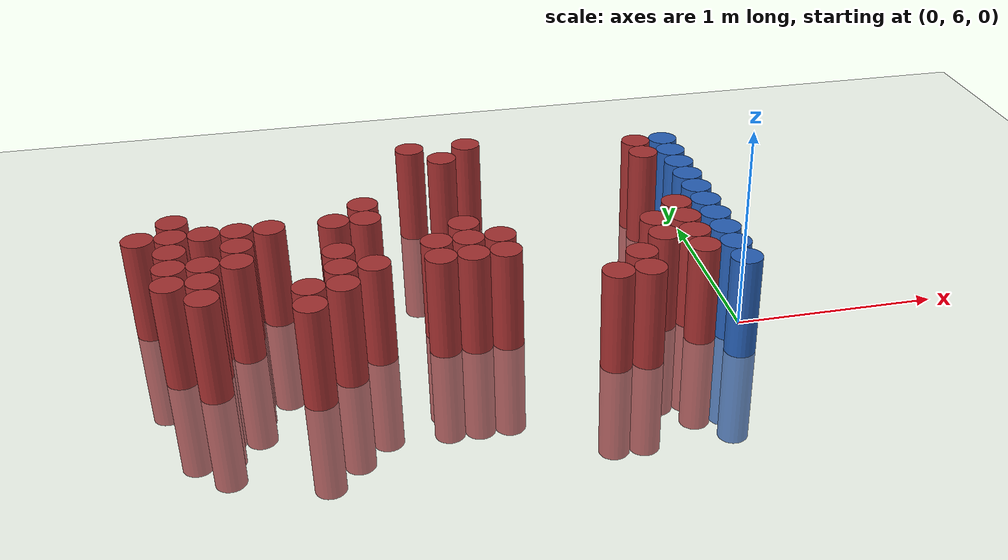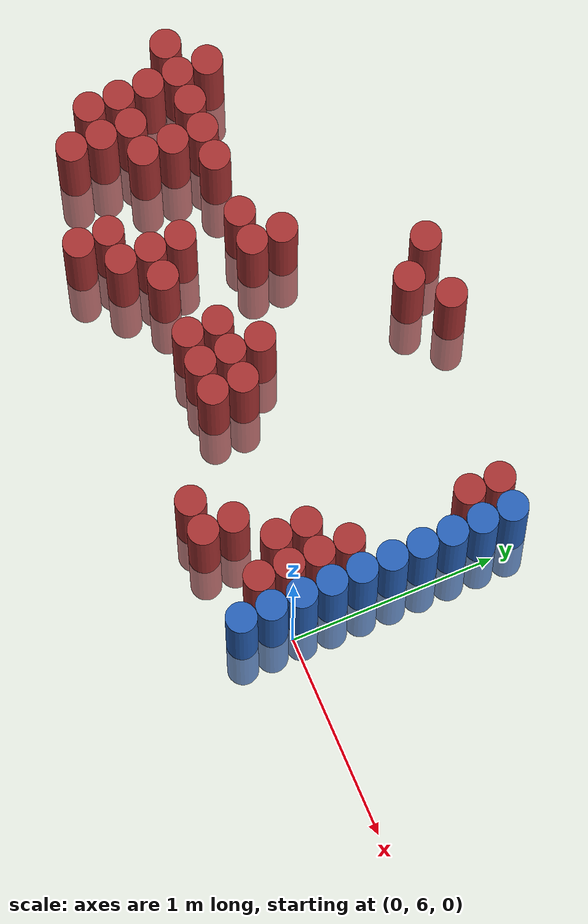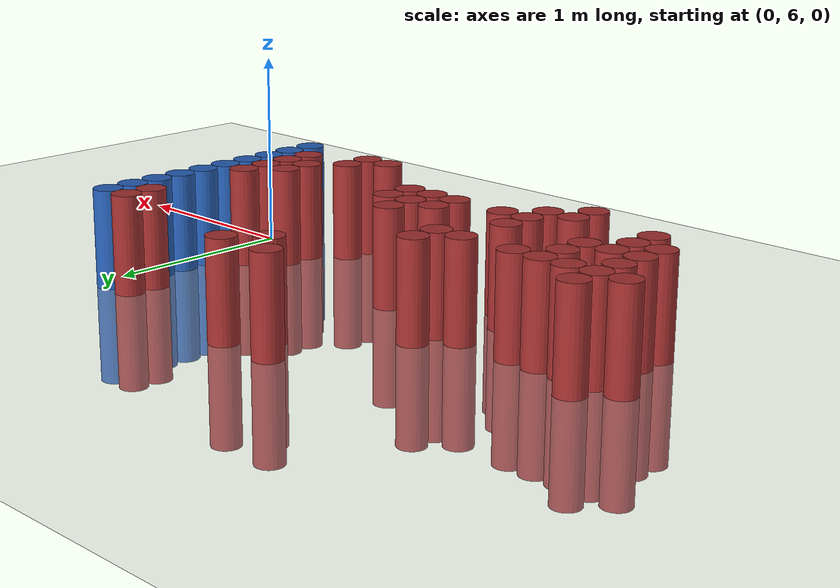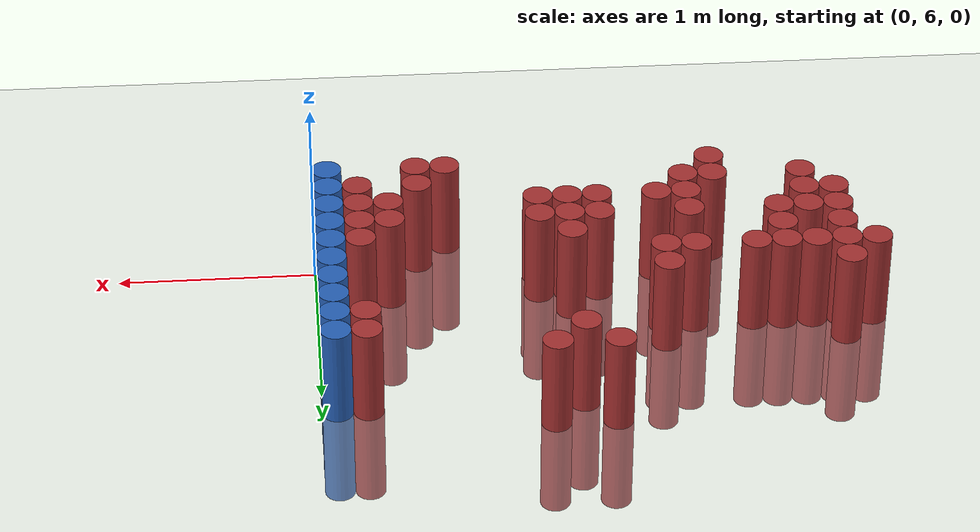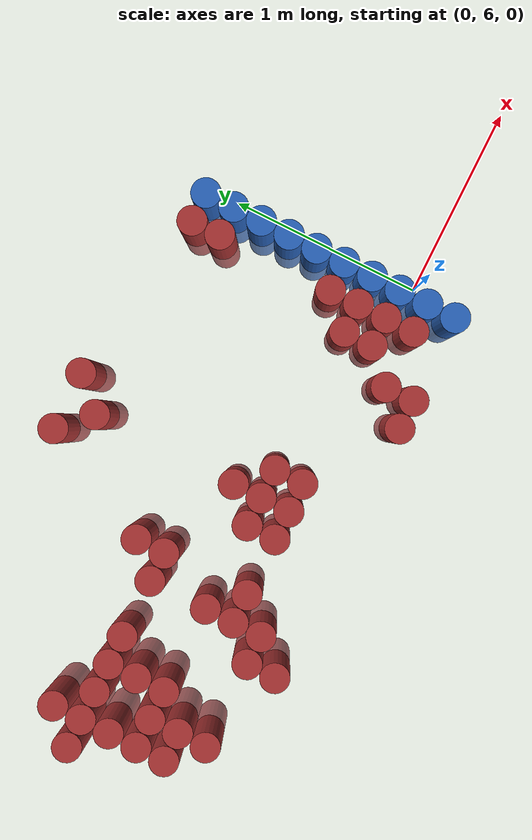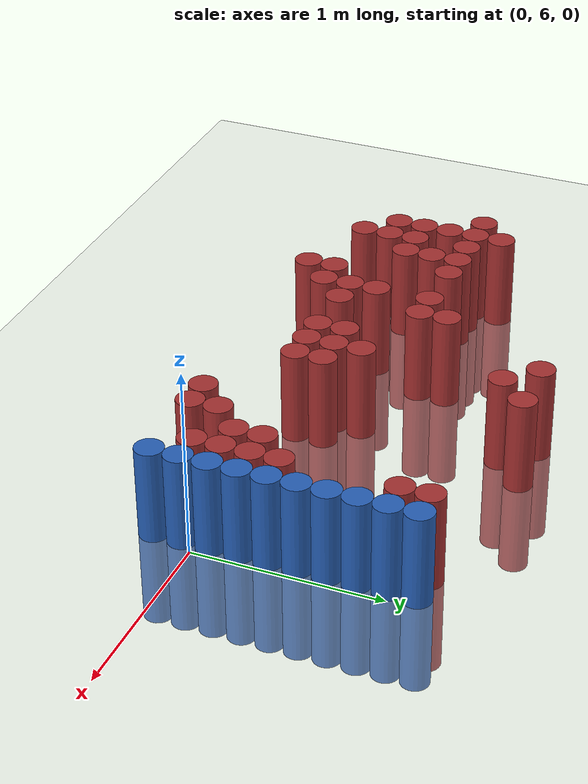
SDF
<sdf version="1.6">
 <world name="default">
  <model name="ground_plane">
   <static>1</static>
   <link name="link">
    <collision name="collision">
     <geometry><plane><normal>0 0 1</normal><size>100 100</size></plane></geometry>
     <surface><friction><ode><mu>100</mu><mu2>50</mu2></ode></friction></surface>
    </collision>
    <visual name="visual">
     <cast_shadows>0</cast_shadows>
     <geometry><plane><normal>0 0 1</normal><size>100 100</size></plane></geometry>
     <material>
      <script><uri>file://media/materials/scripts/gazebo.material</uri><name>Gazebo/Grey</name></script>
     </material>
    </visual>
   </link>
  </model>
  <model name="unit_cylinder_157">
   <static>1</static>
   <pose>-2.775000 6.525000 0.000000 0.000000 0.000000 0.000000</pose>
   <link name="link">
    <inertial>
     <mass>1</mass>
     <inertia><ixx>0.145833</ixx><ixy>0</ixy><ixz>0</ixz><iyy>0.145833</iyy><iyz>0</iyz><izz>0.125</izz></inertia>
    </inertial>
    <collision name="collision">
     <geometry><cylinder><radius>0.075000</radius><length>1</length></cylinder></geometry>
    </collision>
    <visual name="visual">
     <geometry><cylinder><radius>0.075000</radius><length>1</length></cylinder></geometry>
     <material>
      <ambient>0.648000 0.192000 0.192000 1</ambient>
      <diffuse>0.648000 0.192000 0.192000 1</diffuse>
     </material>
     <material>
      <script><name>Gazebo/Grey</name><uri>file://media/materials/scripts/gazebo.material</uri></script>
     </material>
    </visual>
   </link>
  </model>
  <model name="unit_cylinder_160">
   <static>1</static>
   <pose>-2.625000 6.075000 0.000000 0.000000 0.000000 0.000000</pose>
   <link name="link">
    <inertial>
     <mass>1</mass>
     <inertia><ixx>0.145833</ixx><ixy>0</ixy><ixz>0</ixz><iyy>0.145833</iyy><iyz>0</iyz><izz>0.125</izz></inertia>
    </inertial>
    <collision name="collision">
     <geometry><cylinder><radius>0.075000</radius><length>1</length></cylinder></geometry>
    </collision>
    <visual name="visual">
     <geometry><cylinder><radius>0.075000</radius><length>1</length></cylinder></geometry>
     <material>
      <ambient>0.648000 0.192000 0.192000 1</ambient>
      <diffuse>0.648000 0.192000 0.192000 1</diffuse>
     </material>
     <material>
      <script><name>Gazebo/Grey</name><uri>file://media/materials/scripts/gazebo.material</uri></script>
     </material>
    </visual>
   </link>
  </model>
  <model name="unit_cylinder_161">
   <static>1</static>
   <pose>-2.625000 6.225000 0.000000 0.000000 0.000000 0.000000</pose>
   <link name="link">
    <inertial>
     <mass>1</mass>
     <inertia><ixx>0.145833</ixx><ixy>0</ixy><ixz>0</ixz><iyy>0.145833</iyy><iyz>0</iyz><izz>0.125</izz></inertia>
    </inertial>
    <collision name="collision">
     <geometry><cylinder><radius>0.075000</radius><length>1</length></cylinder></geometry>
    </collision>
    <visual name="visual">
     <geometry><cylinder><radius>0.075000</radius><length>1</length></cylinder></geometry>
     <material>
      <ambient>0.648000 0.192000 0.192000 1</ambient>
      <diffuse>0.648000 0.192000 0.192000 1</diffuse>
     </material>
     <material>
      <script><name>Gazebo/Grey</name><uri>file://media/materials/scripts/gazebo.material</uri></script>
     </material>
    </visual>
   </link>
  </model>
  <model name="unit_cylinder_162">
   <static>1</static>
   <pose>-2.625000 6.375000 0.000000 0.000000 0.000000 0.000000</pose>
   <link name="link">
    <inertial>
     <mass>1</mass>
     <inertia><ixx>0.145833</ixx><ixy>0</ixy><ixz>0</ixz><iyy>0.145833</iyy><iyz>0</iyz><izz>0.125</izz></inertia>
    </inertial>
    <collision name="collision">
     <geometry><cylinder><radius>0.075000</radius><length>1</length></cylinder></geometry>
    </collision>
    <visual name="visual">
     <geometry><cylinder><radius>0.075000</radius><length>1</length></cylinder></geometry>
     <material>
      <ambient>0.648000 0.192000 0.192000 1</ambient>
      <diffuse>0.648000 0.192000 0.192000 1</diffuse>
     </material>
     <material>
      <script><name>Gazebo/Grey</name><uri>file://media/materials/scripts/gazebo.material</uri></script>
     </material>
    </visual>
   </link>
  </model>
  <model name="unit_cylinder_163">
   <static>1</static>
   <pose>-2.625000 6.525000 0.000000 0.000000 0.000000 0.000000</pose>
   <link name="link">
    <inertial>
     <mass>1</mass>
     <inertia><ixx>0.145833</ixx><ixy>0</ixy><ixz>0</ixz><iyy>0.145833</iyy><iyz>0</iyz><izz>0.125</izz></inertia>
    </inertial>
    <collision name="collision">
     <geometry><cylinder><radius>0.075000</radius><length>1</length></cylinder></geometry>
    </collision>
    <visual name="visual">
     <geometry><cylinder><radius>0.075000</radius><length>1</length></cylinder></geometry>
     <material>
      <ambient>0.648000 0.192000 0.192000 1</ambient>
      <diffuse>0.648000 0.192000 0.192000 1</diffuse>
     </material>
     <material>
      <script><name>Gazebo/Grey</name><uri>file://media/materials/scripts/gazebo.material</uri></script>
     </material>
    </visual>
   </link>
  </model>
  <model name="unit_cylinder_164">
   <static>1</static>
   <pose>-2.625000 6.675000 0.000000 0.000000 0.000000 0.000000</pose>
   <link name="link">
    <inertial>
     <mass>1</mass>
     <inertia><ixx>0.145833</ixx><ixy>0</ixy><ixz>0</ixz><iyy>0.145833</iyy><iyz>0</iyz><izz>0.125</izz></inertia>
    </inertial>
    <collision name="collision">
     <geometry><cylinder><radius>0.075000</radius><length>1</length></cylinder></geometry>
    </collision>
    <visual name="visual">
     <geometry><cylinder><radius>0.075000</radius><length>1</length></cylinder></geometry>
     <material>
      <ambient>0.648000 0.192000 0.192000 1</ambient>
      <diffuse>0.648000 0.192000 0.192000 1</diffuse>
     </material>
     <material>
      <script><name>Gazebo/Grey</name><uri>file://media/materials/scripts/gazebo.material</uri></script>
     </material>
    </visual>
   </link>
  </model>
  <model name="unit_cylinder_166">
   <static>1</static>
   <pose>-2.475000 5.925000 0.000000 0.000000 0.000000 0.000000</pose>
   <link name="link">
    <inertial>
     <mass>1</mass>
     <inertia><ixx>0.145833</ixx><ixy>0</ixy><ixz>0</ixz><iyy>0.145833</iyy><iyz>0</iyz><izz>0.125</izz></inertia>
    </inertial>
    <collision name="collision">
     <geometry><cylinder><radius>0.075000</radius><length>1</length></cylinder></geometry>
    </collision>
    <visual name="visual">
     <geometry><cylinder><radius>0.075000</radius><length>1</length></cylinder></geometry>
     <material>
      <ambient>0.648000 0.192000 0.192000 1</ambient>
      <diffuse>0.648000 0.192000 0.192000 1</diffuse>
     </material>
     <material>
      <script><name>Gazebo/Grey</name><uri>file://media/materials/scripts/gazebo.material</uri></script>
     </material>
    </visual>
   </link>
  </model>
  <model name="unit_cylinder_167">
   <static>1</static>
   <pose>-2.475000 6.075000 0.000000 0.000000 0.000000 0.000000</pose>
   <link name="link">
    <inertial>
     <mass>1</mass>
     <inertia><ixx>0.145833</ixx><ixy>0</ixy><ixz>0</ixz><iyy>0.145833</iyy><iyz>0</iyz><izz>0.125</izz></inertia>
    </inertial>
    <collision name="collision">
     <geometry><cylinder><radius>0.075000</radius><length>1</length></cylinder></geometry>
    </collision>
    <visual name="visual">
     <geometry><cylinder><radius>0.075000</radius><length>1</length></cylinder></geometry>
     <material>
      <ambient>0.648000 0.192000 0.192000 1</ambient>
      <diffuse>0.648000 0.192000 0.192000 1</diffuse>
     </material>
     <material>
      <script><name>Gazebo/Grey</name><uri>file://media/materials/scripts/gazebo.material</uri></script>
     </material>
    </visual>
   </link>
  </model>
  <model name="unit_cylinder_168">
   <static>1</static>
   <pose>-2.475000 6.225000 0.000000 0.000000 0.000000 0.000000</pose>
   <link name="link">
    <inertial>
     <mass>1</mass>
     <inertia><ixx>0.145833</ixx><ixy>0</ixy><ixz>0</ixz><iyy>0.145833</iyy><iyz>0</iyz><izz>0.125</izz></inertia>
    </inertial>
    <collision name="collision">
     <geometry><cylinder><radius>0.075000</radius><length>1</length></cylinder></geometry>
    </collision>
    <visual name="visual">
     <geometry><cylinder><radius>0.075000</radius><length>1</length></cylinder></geometry>
     <material>
      <ambient>0.648000 0.192000 0.192000 1</ambient>
      <diffuse>0.648000 0.192000 0.192000 1</diffuse>
     </material>
     <material>
      <script><name>Gazebo/Grey</name><uri>file://media/materials/scripts/gazebo.material</uri></script>
     </material>
    </visual>
   </link>
  </model>
  <model name="unit_cylinder_169">
   <static>1</static>
   <pose>-2.475000 6.525000 0.000000 0.000000 0.000000 0.000000</pose>
   <link name="link">
    <inertial>
     <mass>1</mass>
     <inertia><ixx>0.145833</ixx><ixy>0</ixy><ixz>0</ixz><iyy>0.145833</iyy><iyz>0</iyz><izz>0.125</izz></inertia>
    </inertial>
    <collision name="collision">
     <geometry><cylinder><radius>0.075000</radius><length>1</length></cylinder></geometry>
    </collision>
    <visual name="visual">
     <geometry><cylinder><radius>0.075000</radius><length>1</length></cylinder></geometry>
     <material>
      <ambient>0.648000 0.192000 0.192000 1</ambient>
      <diffuse>0.648000 0.192000 0.192000 1</diffuse>
     </material>
     <material>
      <script><name>Gazebo/Grey</name><uri>file://media/materials/scripts/gazebo.material</uri></script>
     </material>
    </visual>
   </link>
  </model>
  <model name="unit_cylinder_170">
   <static>1</static>
   <pose>-2.325000 6.225000 0.000000 0.000000 0.000000 0.000000</pose>
   <link name="link">
    <inertial>
     <mass>1</mass>
     <inertia><ixx>0.145833</ixx><ixy>0</ixy><ixz>0</ixz><iyy>0.145833</iyy><iyz>0</iyz><izz>0.125</izz></inertia>
    </inertial>
    <collision name="collision">
     <geometry><cylinder><radius>0.075000</radius><length>1</length></cylinder></geometry>
    </collision>
    <visual name="visual">
     <geometry><cylinder><radius>0.075000</radius><length>1</length></cylinder></geometry>
     <material>
      <ambient>0.648000 0.192000 0.192000 1</ambient>
      <diffuse>0.648000 0.192000 0.192000 1</diffuse>
     </material>
     <material>
      <script><name>Gazebo/Grey</name><uri>file://media/materials/scripts/gazebo.material</uri></script>
     </material>
    </visual>
   </link>
  </model>
  <model name="unit_cylinder_171">
   <static>1</static>
   <pose>-2.325000 6.375000 0.000000 0.000000 0.000000 0.000000</pose>
   <link name="link">
    <inertial>
     <mass>1</mass>
     <inertia><ixx>0.145833</ixx><ixy>0</ixy><ixz>0</ixz><iyy>0.145833</iyy><iyz>0</iyz><izz>0.125</izz></inertia>
    </inertial>
    <collision name="collision">
     <geometry><cylinder><radius>0.075000</radius><length>1</length></cylinder></geometry>
    </collision>
    <visual name="visual">
     <geometry><cylinder><radius>0.075000</radius><length>1</length></cylinder></geometry>
     <material>
      <ambient>0.648000 0.192000 0.192000 1</ambient>
      <diffuse>0.648000 0.192000 0.192000 1</diffuse>
     </material>
     <material>
      <script><name>Gazebo/Grey</name><uri>file://media/materials/scripts/gazebo.material</uri></script>
     </material>
    </visual>
   </link>
  </model>
  <model name="unit_cylinder_172">
   <static>1</static>
   <pose>-2.325000 6.525000 0.000000 0.000000 0.000000 0.000000</pose>
   <link name="link">
    <inertial>
     <mass>1</mass>
     <inertia><ixx>0.145833</ixx><ixy>0</ixy><ixz>0</ixz><iyy>0.145833</iyy><iyz>0</iyz><izz>0.125</izz></inertia>
    </inertial>
    <collision name="collision">
     <geometry><cylinder><radius>0.075000</radius><length>1</length></cylinder></geometry>
    </collision>
    <visual name="visual">
     <geometry><cylinder><radius>0.075000</radius><length>1</length></cylinder></geometry>
     <material>
      <ambient>0.648000 0.192000 0.192000 1</ambient>
      <diffuse>0.648000 0.192000 0.192000 1</diffuse>
     </material>
     <material>
      <script><name>Gazebo/Grey</name><uri>file://media/materials/scripts/gazebo.material</uri></script>
     </material>
    </visual>
   </link>
  </model>
  <model name="unit_cylinder_177">
   <static>1</static>
   <pose>-2.175000 6.525000 0.000000 0.000000 0.000000 0.000000</pose>
   <link name="link">
    <inertial>
     <mass>1</mass>
     <inertia><ixx>0.145833</ixx><ixy>0</ixy><ixz>0</ixz><iyy>0.145833</iyy><iyz>0</iyz><izz>0.125</izz></inertia>
    </inertial>
    <collision name="collision">
     <geometry><cylinder><radius>0.075000</radius><length>1</length></cylinder></geometry>
    </collision>
    <visual name="visual">
     <geometry><cylinder><radius>0.075000</radius><length>1</length></cylinder></geometry>
     <material>
      <ambient>0.648000 0.192000 0.192000 1</ambient>
      <diffuse>0.648000 0.192000 0.192000 1</diffuse>
     </material>
     <material>
      <script><name>Gazebo/Grey</name><uri>file://media/materials/scripts/gazebo.material</uri></script>
     </material>
    </visual>
   </link>
  </model>
  <model name="unit_cylinder_182">
   <static>1</static>
   <pose>-2.025000 5.775000 0.000000 0.000000 0.000000 0.000000</pose>
   <link name="link">
    <inertial>
     <mass>1</mass>
     <inertia><ixx>0.145833</ixx><ixy>0</ixy><ixz>0</ixz><iyy>0.145833</iyy><iyz>0</iyz><izz>0.125</izz></inertia>
    </inertial>
    <collision name="collision">
     <geometry><cylinder><radius>0.075000</radius><length>1</length></cylinder></geometry>
    </collision>
    <visual name="visual">
     <geometry><cylinder><radius>0.075000</radius><length>1</length></cylinder></geometry>
     <material>
      <ambient>0.648000 0.192000 0.192000 1</ambient>
      <diffuse>0.648000 0.192000 0.192000 1</diffuse>
     </material>
     <material>
      <script><name>Gazebo/Grey</name><uri>file://media/materials/scripts/gazebo.material</uri></script>
     </material>
    </visual>
   </link>
  </model>
  <model name="unit_cylinder_183">
   <static>1</static>
   <pose>-2.025000 5.925000 0.000000 0.000000 0.000000 0.000000</pose>
   <link name="link">
    <inertial>
     <mass>1</mass>
     <inertia><ixx>0.145833</ixx><ixy>0</ixy><ixz>0</ixz><iyy>0.145833</iyy><iyz>0</iyz><izz>0.125</izz></inertia>
    </inertial>
    <collision name="collision">
     <geometry><cylinder><radius>0.075000</radius><length>1</length></cylinder></geometry>
    </collision>
    <visual name="visual">
     <geometry><cylinder><radius>0.075000</radius><length>1</length></cylinder></geometry>
     <material>
      <ambient>0.648000 0.192000 0.192000 1</ambient>
      <diffuse>0.648000 0.192000 0.192000 1</diffuse>
     </material>
     <material>
      <script><name>Gazebo/Grey</name><uri>file://media/materials/scripts/gazebo.material</uri></script>
     </material>
    </visual>
   </link>
  </model>
  <model name="unit_cylinder_187">
   <static>1</static>
   <pose>-1.875000 5.925000 0.000000 0.000000 0.000000 0.000000</pose>
   <link name="link">
    <inertial>
     <mass>1</mass>
     <inertia><ixx>0.145833</ixx><ixy>0</ixy><ixz>0</ixz><iyy>0.145833</iyy><iyz>0</iyz><izz>0.125</izz></inertia>
    </inertial>
    <collision name="collision">
     <geometry><cylinder><radius>0.075000</radius><length>1</length></cylinder></geometry>
    </collision>
    <visual name="visual">
     <geometry><cylinder><radius>0.075000</radius><length>1</length></cylinder></geometry>
     <material>
      <ambient>0.648000 0.192000 0.192000 1</ambient>
      <diffuse>0.648000 0.192000 0.192000 1</diffuse>
     </material>
     <material>
      <script><name>Gazebo/Grey</name><uri>file://media/materials/scripts/gazebo.material</uri></script>
     </material>
    </visual>
   </link>
  </model>
  <model name="unit_cylinder_188">
   <static>1</static>
   <pose>-1.875000 6.075000 0.000000 0.000000 0.000000 0.000000</pose>
   <link name="link">
    <inertial>
     <mass>1</mass>
     <inertia><ixx>0.145833</ixx><ixy>0</ixy><ixz>0</ixz><iyy>0.145833</iyy><iyz>0</iyz><izz>0.125</izz></inertia>
    </inertial>
    <collision name="collision">
     <geometry><cylinder><radius>0.075000</radius><length>1</length></cylinder></geometry>
    </collision>
    <visual name="visual">
     <geometry><cylinder><radius>0.075000</radius><length>1</length></cylinder></geometry>
     <material>
      <ambient>0.648000 0.192000 0.192000 1</ambient>
      <diffuse>0.648000 0.192000 0.192000 1</diffuse>
     </material>
     <material>
      <script><name>Gazebo/Grey</name><uri>file://media/materials/scripts/gazebo.material</uri></script>
     </material>
    </visual>
   </link>
  </model>
  <model name="unit_cylinder_189">
   <static>1</static>
   <pose>-1.875000 6.225000 0.000000 0.000000 0.000000 0.000000</pose>
   <link name="link">
    <inertial>
     <mass>1</mass>
     <inertia><ixx>0.145833</ixx><ixy>0</ixy><ixz>0</ixz><iyy>0.145833</iyy><iyz>0</iyz><izz>0.125</izz></inertia>
    </inertial>
    <collision name="collision">
     <geometry><cylinder><radius>0.075000</radius><length>1</length></cylinder></geometry>
    </collision>
    <visual name="visual">
     <geometry><cylinder><radius>0.075000</radius><length>1</length></cylinder></geometry>
     <material>
      <ambient>0.648000 0.192000 0.192000 1</ambient>
      <diffuse>0.648000 0.192000 0.192000 1</diffuse>
     </material>
     <material>
      <script><name>Gazebo/Grey</name><uri>file://media/materials/scripts/gazebo.material</uri></script>
     </material>
    </visual>
   </link>
  </model>
  <model name="unit_cylinder_190">
   <static>1</static>
   <pose>-1.875000 6.525000 0.000000 0.000000 0.000000 0.000000</pose>
   <link name="link">
    <inertial>
     <mass>1</mass>
     <inertia><ixx>0.145833</ixx><ixy>0</ixy><ixz>0</ixz><iyy>0.145833</iyy><iyz>0</iyz><izz>0.125</izz></inertia>
    </inertial>
    <collision name="collision">
     <geometry><cylinder><radius>0.075000</radius><length>1</length></cylinder></geometry>
    </collision>
    <visual name="visual">
     <geometry><cylinder><radius>0.075000</radius><length>1</length></cylinder></geometry>
     <material>
      <ambient>0.648000 0.192000 0.192000 1</ambient>
      <diffuse>0.648000 0.192000 0.192000 1</diffuse>
     </material>
     <material>
      <script><name>Gazebo/Grey</name><uri>file://media/materials/scripts/gazebo.material</uri></script>
     </material>
    </visual>
   </link>
  </model>
  <model name="unit_cylinder_194">
   <static>1</static>
   <pose>-1.725000 6.075000 0.000000 0.000000 0.000000 0.000000</pose>
   <link name="link">
    <inertial>
     <mass>1</mass>
     <inertia><ixx>0.145833</ixx><ixy>0</ixy><ixz>0</ixz><iyy>0.145833</iyy><iyz>0</iyz><izz>0.125</izz></inertia>
    </inertial>
    <collision name="collision">
     <geometry><cylinder><radius>0.075000</radius><length>1</length></cylinder></geometry>
    </collision>
    <visual name="visual">
     <geometry><cylinder><radius>0.075000</radius><length>1</length></cylinder></geometry>
     <material>
      <ambient>0.648000 0.192000 0.192000 1</ambient>
      <diffuse>0.648000 0.192000 0.192000 1</diffuse>
     </material>
     <material>
      <script><name>Gazebo/Grey</name><uri>file://media/materials/scripts/gazebo.material</uri></script>
     </material>
    </visual>
   </link>
  </model>
  <model name="unit_cylinder_195">
   <static>1</static>
   <pose>-1.725000 6.525000 0.000000 0.000000 0.000000 0.000000</pose>
   <link name="link">
    <inertial>
     <mass>1</mass>
     <inertia><ixx>0.145833</ixx><ixy>0</ixy><ixz>0</ixz><iyy>0.145833</iyy><iyz>0</iyz><izz>0.125</izz></inertia>
    </inertial>
    <collision name="collision">
     <geometry><cylinder><radius>0.075000</radius><length>1</length></cylinder></geometry>
    </collision>
    <visual name="visual">
     <geometry><cylinder><radius>0.075000</radius><length>1</length></cylinder></geometry>
     <material>
      <ambient>0.648000 0.192000 0.192000 1</ambient>
      <diffuse>0.648000 0.192000 0.192000 1</diffuse>
     </material>
     <material>
      <script><name>Gazebo/Grey</name><uri>file://media/materials/scripts/gazebo.material</uri></script>
     </material>
    </visual>
   </link>
  </model>
  <model name="unit_cylinder_196">
   <static>1</static>
   <pose>-1.725000 6.675000 0.000000 0.000000 0.000000 0.000000</pose>
   <link name="link">
    <inertial>
     <mass>1</mass>
     <inertia><ixx>0.145833</ixx><ixy>0</ixy><ixz>0</ixz><iyy>0.145833</iyy><iyz>0</iyz><izz>0.125</izz></inertia>
    </inertial>
    <collision name="collision">
     <geometry><cylinder><radius>0.075000</radius><length>1</length></cylinder></geometry>
    </collision>
    <visual name="visual">
     <geometry><cylinder><radius>0.075000</radius><length>1</length></cylinder></geometry>
     <material>
      <ambient>0.648000 0.192000 0.192000 1</ambient>
      <diffuse>0.648000 0.192000 0.192000 1</diffuse>
     </material>
     <material>
      <script><name>Gazebo/Grey</name><uri>file://media/materials/scripts/gazebo.material</uri></script>
     </material>
    </visual>
   </link>
  </model>
  <model name="unit_cylinder_200">
   <static>1</static>
   <pose>-1.425000 6.075000 0.000000 0.000000 0.000000 0.000000</pose>
   <link name="link">
    <inertial>
     <mass>1</mass>
     <inertia><ixx>0.145833</ixx><ixy>0</ixy><ixz>0</ixz><iyy>0.145833</iyy><iyz>0</iyz><izz>0.125</izz></inertia>
    </inertial>
    <collision name="collision">
     <geometry><cylinder><radius>0.075000</radius><length>1</length></cylinder></geometry>
    </collision>
    <visual name="visual">
     <geometry><cylinder><radius>0.075000</radius><length>1</length></cylinder></geometry>
     <material>
      <ambient>0.648000 0.192000 0.192000 1</ambient>
      <diffuse>0.648000 0.192000 0.192000 1</diffuse>
     </material>
     <material>
      <script><name>Gazebo/Grey</name><uri>file://media/materials/scripts/gazebo.material</uri></script>
     </material>
    </visual>
   </link>
  </model>
  <model name="unit_cylinder_201">
   <static>1</static>
   <pose>-1.425000 6.225000 0.000000 0.000000 0.000000 0.000000</pose>
   <link name="link">
    <inertial>
     <mass>1</mass>
     <inertia><ixx>0.145833</ixx><ixy>0</ixy><ixz>0</ixz><iyy>0.145833</iyy><iyz>0</iyz><izz>0.125</izz></inertia>
    </inertial>
    <collision name="collision">
     <geometry><cylinder><radius>0.075000</radius><length>1</length></cylinder></geometry>
    </collision>
    <visual name="visual">
     <geometry><cylinder><radius>0.075000</radius><length>1</length></cylinder></geometry>
     <material>
      <ambient>0.648000 0.192000 0.192000 1</ambient>
      <diffuse>0.648000 0.192000 0.192000 1</diffuse>
     </material>
     <material>
      <script><name>Gazebo/Grey</name><uri>file://media/materials/scripts/gazebo.material</uri></script>
     </material>
    </visual>
   </link>
  </model>
  <model name="unit_cylinder_202">
   <static>1</static>
   <pose>-1.425000 7.275000 0.000000 0.000000 0.000000 0.000000</pose>
   <link name="link">
    <inertial>
     <mass>1</mass>
     <inertia><ixx>0.145833</ixx><ixy>0</ixy><ixz>0</ixz><iyy>0.145833</iyy><iyz>0</iyz><izz>0.125</izz></inertia>
    </inertial>
    <collision name="collision">
     <geometry><cylinder><radius>0.075000</radius><length>1</length></cylinder></geometry>
    </collision>
    <visual name="visual">
     <geometry><cylinder><radius>0.075000</radius><length>1</length></cylinder></geometry>
     <material>
      <ambient>0.648000 0.192000 0.192000 1</ambient>
      <diffuse>0.648000 0.192000 0.192000 1</diffuse>
     </material>
     <material>
      <script><name>Gazebo/Grey</name><uri>file://media/materials/scripts/gazebo.material</uri></script>
     </material>
    </visual>
   </link>
  </model>
  <model name="unit_cylinder_204">
   <static>1</static>
   <pose>-1.275000 6.075000 0.000000 0.000000 0.000000 0.000000</pose>
   <link name="link">
    <inertial>
     <mass>1</mass>
     <inertia><ixx>0.145833</ixx><ixy>0</ixy><ixz>0</ixz><iyy>0.145833</iyy><iyz>0</iyz><izz>0.125</izz></inertia>
    </inertial>
    <collision name="collision">
     <geometry><cylinder><radius>0.075000</radius><length>1</length></cylinder></geometry>
    </collision>
    <visual name="visual">
     <geometry><cylinder><radius>0.075000</radius><length>1</length></cylinder></geometry>
     <material>
      <ambient>0.648000 0.192000 0.192000 1</ambient>
      <diffuse>0.648000 0.192000 0.192000 1</diffuse>
     </material>
     <material>
      <script><name>Gazebo/Grey</name><uri>file://media/materials/scripts/gazebo.material</uri></script>
     </material>
    </visual>
   </link>
  </model>
  <model name="unit_cylinder_205">
   <static>1</static>
   <pose>-1.275000 6.225000 0.000000 0.000000 0.000000 0.000000</pose>
   <link name="link">
    <inertial>
     <mass>1</mass>
     <inertia><ixx>0.145833</ixx><ixy>0</ixy><ixz>0</ixz><iyy>0.145833</iyy><iyz>0</iyz><izz>0.125</izz></inertia>
    </inertial>
    <collision name="collision">
     <geometry><cylinder><radius>0.075000</radius><length>1</length></cylinder></geometry>
    </collision>
    <visual name="visual">
     <geometry><cylinder><radius>0.075000</radius><length>1</length></cylinder></geometry>
     <material>
      <ambient>0.648000 0.192000 0.192000 1</ambient>
      <diffuse>0.648000 0.192000 0.192000 1</diffuse>
     </material>
     <material>
      <script><name>Gazebo/Grey</name><uri>file://media/materials/scripts/gazebo.material</uri></script>
     </material>
    </visual>
   </link>
  </model>
  <model name="unit_cylinder_206">
   <static>1</static>
   <pose>-1.275000 6.375000 0.000000 0.000000 0.000000 0.000000</pose>
   <link name="link">
    <inertial>
     <mass>1</mass>
     <inertia><ixx>0.145833</ixx><ixy>0</ixy><ixz>0</ixz><iyy>0.145833</iyy><iyz>0</iyz><izz>0.125</izz></inertia>
    </inertial>
    <collision name="collision">
     <geometry><cylinder><radius>0.075000</radius><length>1</length></cylinder></geometry>
    </collision>
    <visual name="visual">
     <geometry><cylinder><radius>0.075000</radius><length>1</length></cylinder></geometry>
     <material>
      <ambient>0.648000 0.192000 0.192000 1</ambient>
      <diffuse>0.648000 0.192000 0.192000 1</diffuse>
     </material>
     <material>
      <script><name>Gazebo/Grey</name><uri>file://media/materials/scripts/gazebo.material</uri></script>
     </material>
    </visual>
   </link>
  </model>
  <model name="unit_cylinder_207">
   <static>1</static>
   <pose>-1.275000 7.125000 0.000000 0.000000 0.000000 0.000000</pose>
   <link name="link">
    <inertial>
     <mass>1</mass>
     <inertia><ixx>0.145833</ixx><ixy>0</ixy><ixz>0</ixz><iyy>0.145833</iyy><iyz>0</iyz><izz>0.125</izz></inertia>
    </inertial>
    <collision name="collision">
     <geometry><cylinder><radius>0.075000</radius><length>1</length></cylinder></geometry>
    </collision>
    <visual name="visual">
     <geometry><cylinder><radius>0.075000</radius><length>1</length></cylinder></geometry>
     <material>
      <ambient>0.648000 0.192000 0.192000 1</ambient>
      <diffuse>0.648000 0.192000 0.192000 1</diffuse>
     </material>
     <material>
      <script><name>Gazebo/Grey</name><uri>file://media/materials/scripts/gazebo.material</uri></script>
     </material>
    </visual>
   </link>
  </model>
  <model name="unit_cylinder_210">
   <static>1</static>
   <pose>-1.125000 6.075000 0.000000 0.000000 0.000000 0.000000</pose>
   <link name="link">
    <inertial>
     <mass>1</mass>
     <inertia><ixx>0.145833</ixx><ixy>0</ixy><ixz>0</ixz><iyy>0.145833</iyy><iyz>0</iyz><izz>0.125</izz></inertia>
    </inertial>
    <collision name="collision">
     <geometry><cylinder><radius>0.075000</radius><length>1</length></cylinder></geometry>
    </collision>
    <visual name="visual">
     <geometry><cylinder><radius>0.075000</radius><length>1</length></cylinder></geometry>
     <material>
      <ambient>0.648000 0.192000 0.192000 1</ambient>
      <diffuse>0.648000 0.192000 0.192000 1</diffuse>
     </material>
     <material>
      <script><name>Gazebo/Grey</name><uri>file://media/materials/scripts/gazebo.material</uri></script>
     </material>
    </visual>
   </link>
  </model>
  <model name="unit_cylinder_211">
   <static>1</static>
   <pose>-1.125000 6.225000 0.000000 0.000000 0.000000 0.000000</pose>
   <link name="link">
    <inertial>
     <mass>1</mass>
     <inertia><ixx>0.145833</ixx><ixy>0</ixy><ixz>0</ixz><iyy>0.145833</iyy><iyz>0</iyz><izz>0.125</izz></inertia>
    </inertial>
    <collision name="collision">
     <geometry><cylinder><radius>0.075000</radius><length>1</length></cylinder></geometry>
    </collision>
    <visual name="visual">
     <geometry><cylinder><radius>0.075000</radius><length>1</length></cylinder></geometry>
     <material>
      <ambient>0.648000 0.192000 0.192000 1</ambient>
      <diffuse>0.648000 0.192000 0.192000 1</diffuse>
     </material>
     <material>
      <script><name>Gazebo/Grey</name><uri>file://media/materials/scripts/gazebo.material</uri></script>
     </material>
    </visual>
   </link>
  </model>
  <model name="unit_cylinder_212">
   <static>1</static>
   <pose>-1.125000 7.275000 0.000000 0.000000 0.000000 0.000000</pose>
   <link name="link">
    <inertial>
     <mass>1</mass>
     <inertia><ixx>0.145833</ixx><ixy>0</ixy><ixz>0</ixz><iyy>0.145833</iyy><iyz>0</iyz><izz>0.125</izz></inertia>
    </inertial>
    <collision name="collision">
     <geometry><cylinder><radius>0.075000</radius><length>1</length></cylinder></geometry>
    </collision>
    <visual name="visual">
     <geometry><cylinder><radius>0.075000</radius><length>1</length></cylinder></geometry>
     <material>
      <ambient>0.648000 0.192000 0.192000 1</ambient>
      <diffuse>0.648000 0.192000 0.192000 1</diffuse>
     </material>
     <material>
      <script><name>Gazebo/Grey</name><uri>file://media/materials/scripts/gazebo.material</uri></script>
     </material>
    </visual>
   </link>
  </model>
  <model name="unit_cylinder_213">
   <static>1</static>
   <pose>-0.675000 5.775000 0.000000 0.000000 0.000000 0.000000</pose>
   <link name="link">
    <inertial>
     <mass>1</mass>
     <inertia><ixx>0.145833</ixx><ixy>0</ixy><ixz>0</ixz><iyy>0.145833</iyy><iyz>0</iyz><izz>0.125</izz></inertia>
    </inertial>
    <collision name="collision">
     <geometry><cylinder><radius>0.075000</radius><length>1</length></cylinder></geometry>
    </collision>
    <visual name="visual">
     <geometry><cylinder><radius>0.075000</radius><length>1</length></cylinder></geometry>
     <material>
      <ambient>0.648000 0.192000 0.192000 1</ambient>
      <diffuse>0.648000 0.192000 0.192000 1</diffuse>
     </material>
     <material>
      <script><name>Gazebo/Grey</name><uri>file://media/materials/scripts/gazebo.material</uri></script>
     </material>
    </visual>
   </link>
  </model>
  <model name="unit_cylinder_214">
   <static>1</static>
   <pose>-0.525000 5.775000 0.000000 0.000000 0.000000 0.000000</pose>
   <link name="link">
    <inertial>
     <mass>1</mass>
     <inertia><ixx>0.145833</ixx><ixy>0</ixy><ixz>0</ixz><iyy>0.145833</iyy><iyz>0</iyz><izz>0.125</izz></inertia>
    </inertial>
    <collision name="collision">
     <geometry><cylinder><radius>0.075000</radius><length>1</length></cylinder></geometry>
    </collision>
    <visual name="visual">
     <geometry><cylinder><radius>0.075000</radius><length>1</length></cylinder></geometry>
     <material>
      <ambient>0.648000 0.192000 0.192000 1</ambient>
      <diffuse>0.648000 0.192000 0.192000 1</diffuse>
     </material>
     <material>
      <script><name>Gazebo/Grey</name><uri>file://media/materials/scripts/gazebo.material</uri></script>
     </material>
    </visual>
   </link>
  </model>
  <model name="unit_cylinder_215">
   <static>1</static>
   <pose>-0.525000 5.925000 0.000000 0.000000 0.000000 0.000000</pose>
   <link name="link">
    <inertial>
     <mass>1</mass>
     <inertia><ixx>0.145833</ixx><ixy>0</ixy><ixz>0</ixz><iyy>0.145833</iyy><iyz>0</iyz><izz>0.125</izz></inertia>
    </inertial>
    <collision name="collision">
     <geometry><cylinder><radius>0.075000</radius><length>1</length></cylinder></geometry>
    </collision>
    <visual name="visual">
     <geometry><cylinder><radius>0.075000</radius><length>1</length></cylinder></geometry>
     <material>
      <ambient>0.648000 0.192000 0.192000 1</ambient>
      <diffuse>0.648000 0.192000 0.192000 1</diffuse>
     </material>
     <material>
      <script><name>Gazebo/Grey</name><uri>file://media/materials/scripts/gazebo.material</uri></script>
     </material>
    </visual>
   </link>
  </model>
  <model name="unit_cylinder_218">
   <static>1</static>
   <pose>-0.375000 6.075000 0.000000 0.000000 0.000000 0.000000</pose>
   <link name="link">
    <inertial>
     <mass>1</mass>
     <inertia><ixx>0.145833</ixx><ixy>0</ixy><ixz>0</ixz><iyy>0.145833</iyy><iyz>0</iyz><izz>0.125</izz></inertia>
    </inertial>
    <collision name="collision">
     <geometry><cylinder><radius>0.075000</radius><length>1</length></cylinder></geometry>
    </collision>
    <visual name="visual">
     <geometry><cylinder><radius>0.075000</radius><length>1</length></cylinder></geometry>
     <material>
      <ambient>0.648000 0.192000 0.192000 1</ambient>
      <diffuse>0.648000 0.192000 0.192000 1</diffuse>
     </material>
     <material>
      <script><name>Gazebo/Grey</name><uri>file://media/materials/scripts/gazebo.material</uri></script>
     </material>
    </visual>
   </link>
  </model>
  <model name="unit_cylinder_219">
   <static>1</static>
   <pose>-0.375000 6.225000 0.000000 0.000000 0.000000 0.000000</pose>
   <link name="link">
    <inertial>
     <mass>1</mass>
     <inertia><ixx>0.145833</ixx><ixy>0</ixy><ixz>0</ixz><iyy>0.145833</iyy><iyz>0</iyz><izz>0.125</izz></inertia>
    </inertial>
    <collision name="collision">
     <geometry><cylinder><radius>0.075000</radius><length>1</length></cylinder></geometry>
    </collision>
    <visual name="visual">
     <geometry><cylinder><radius>0.075000</radius><length>1</length></cylinder></geometry>
     <material>
      <ambient>0.648000 0.192000 0.192000 1</ambient>
      <diffuse>0.648000 0.192000 0.192000 1</diffuse>
     </material>
     <material>
      <script><name>Gazebo/Grey</name><uri>file://media/materials/scripts/gazebo.material</uri></script>
     </material>
    </visual>
   </link>
  </model>
  <model name="unit_cylinder_223">
   <static>1</static>
   <pose>-0.225000 5.925000 0.000000 0.000000 0.000000 0.000000</pose>
   <link name="link">
    <inertial>
     <mass>1</mass>
     <inertia><ixx>0.145833</ixx><ixy>0</ixy><ixz>0</ixz><iyy>0.145833</iyy><iyz>0</iyz><izz>0.125</izz></inertia>
    </inertial>
    <collision name="collision">
     <geometry><cylinder><radius>0.075000</radius><length>1</length></cylinder></geometry>
    </collision>
    <visual name="visual">
     <geometry><cylinder><radius>0.075000</radius><length>1</length></cylinder></geometry>
     <material>
      <ambient>0.648000 0.192000 0.192000 1</ambient>
      <diffuse>0.648000 0.192000 0.192000 1</diffuse>
     </material>
     <material>
      <script><name>Gazebo/Grey</name><uri>file://media/materials/scripts/gazebo.material</uri></script>
     </material>
    </visual>
   </link>
  </model>
  <model name="unit_cylinder_224">
   <static>1</static>
   <pose>-0.225000 6.075000 0.000000 0.000000 0.000000 0.000000</pose>
   <link name="link">
    <inertial>
     <mass>1</mass>
     <inertia><ixx>0.145833</ixx><ixy>0</ixy><ixz>0</ixz><iyy>0.145833</iyy><iyz>0</iyz><izz>0.125</izz></inertia>
    </inertial>
    <collision name="collision">
     <geometry><cylinder><radius>0.075000</radius><length>1</length></cylinder></geometry>
    </collision>
    <visual name="visual">
     <geometry><cylinder><radius>0.075000</radius><length>1</length></cylinder></geometry>
     <material>
      <ambient>0.648000 0.192000 0.192000 1</ambient>
      <diffuse>0.648000 0.192000 0.192000 1</diffuse>
     </material>
     <material>
      <script><name>Gazebo/Grey</name><uri>file://media/materials/scripts/gazebo.material</uri></script>
     </material>
    </visual>
   </link>
  </model>
  <model name="unit_cylinder_225">
   <static>1</static>
   <pose>-0.225000 6.225000 0.000000 0.000000 0.000000 0.000000</pose>
   <link name="link">
    <inertial>
     <mass>1</mass>
     <inertia><ixx>0.145833</ixx><ixy>0</ixy><ixz>0</ixz><iyy>0.145833</iyy><iyz>0</iyz><izz>0.125</izz></inertia>
    </inertial>
    <collision name="collision">
     <geometry><cylinder><radius>0.075000</radius><length>1</length></cylinder></geometry>
    </collision>
    <visual name="visual">
     <geometry><cylinder><radius>0.075000</radius><length>1</length></cylinder></geometry>
     <material>
      <ambient>0.648000 0.192000 0.192000 1</ambient>
      <diffuse>0.648000 0.192000 0.192000 1</diffuse>
     </material>
     <material>
      <script><name>Gazebo/Grey</name><uri>file://media/materials/scripts/gazebo.material</uri></script>
     </material>
    </visual>
   </link>
  </model>
  <model name="unit_cylinder_226">
   <static>1</static>
   <pose>-0.225000 6.375000 0.000000 0.000000 0.000000 0.000000</pose>
   <link name="link">
    <inertial>
     <mass>1</mass>
     <inertia><ixx>0.145833</ixx><ixy>0</ixy><ixz>0</ixz><iyy>0.145833</iyy><iyz>0</iyz><izz>0.125</izz></inertia>
    </inertial>
    <collision name="collision">
     <geometry><cylinder><radius>0.075000</radius><length>1</length></cylinder></geometry>
    </collision>
    <visual name="visual">
     <geometry><cylinder><radius>0.075000</radius><length>1</length></cylinder></geometry>
     <material>
      <ambient>0.648000 0.192000 0.192000 1</ambient>
      <diffuse>0.648000 0.192000 0.192000 1</diffuse>
     </material>
     <material>
      <script><name>Gazebo/Grey</name><uri>file://media/materials/scripts/gazebo.material</uri></script>
     </material>
    </visual>
   </link>
  </model>
  <model name="unit_cylinder_227">
   <static>1</static>
   <pose>-0.225000 6.975000 0.000000 0.000000 0.000000 0.000000</pose>
   <link name="link">
    <inertial>
     <mass>1</mass>
     <inertia><ixx>0.145833</ixx><ixy>0</ixy><ixz>0</ixz><iyy>0.145833</iyy><iyz>0</iyz><izz>0.125</izz></inertia>
    </inertial>
    <collision name="collision">
     <geometry><cylinder><radius>0.075000</radius><length>1</length></cylinder></geometry>
    </collision>
    <visual name="visual">
     <geometry><cylinder><radius>0.075000</radius><length>1</length></cylinder></geometry>
     <material>
      <ambient>0.648000 0.192000 0.192000 1</ambient>
      <diffuse>0.648000 0.192000 0.192000 1</diffuse>
     </material>
     <material>
      <script><name>Gazebo/Grey</name><uri>file://media/materials/scripts/gazebo.material</uri></script>
     </material>
    </visual>
   </link>
  </model>
  <model name="unit_cylinder_228">
   <static>1</static>
   <pose>-0.225000 7.125000 0.000000 0.000000 0.000000 0.000000</pose>
   <link name="link">
    <inertial>
     <mass>1</mass>
     <inertia><ixx>0.145833</ixx><ixy>0</ixy><ixz>0</ixz><iyy>0.145833</iyy><iyz>0</iyz><izz>0.125</izz></inertia>
    </inertial>
    <collision name="collision">
     <geometry><cylinder><radius>0.075000</radius><length>1</length></cylinder></geometry>
    </collision>
    <visual name="visual">
     <geometry><cylinder><radius>0.075000</radius><length>1</length></cylinder></geometry>
     <material>
      <ambient>0.648000 0.192000 0.192000 1</ambient>
      <diffuse>0.648000 0.192000 0.192000 1</diffuse>
     </material>
     <material>
      <script><name>Gazebo/Grey</name><uri>file://media/materials/scripts/gazebo.material</uri></script>
     </material>
    </visual>
   </link>
  </model>
  <model name="unit_cylinder_245">
   <static>1</static>
   <pose>-0.075000 5.775000 0.000000 0.000000 0.000000 0.000000</pose>
   <link name="link">
    <inertial>
     <mass>1</mass>
     <inertia><ixx>0.145833</ixx><ixy>0</ixy><ixz>0</ixz><iyy>0.145833</iyy><iyz>0</iyz><izz>0.125</izz></inertia>
    </inertial>
    <collision name="collision">
     <geometry><cylinder><radius>0.075000</radius><length>1</length></cylinder></geometry>
    </collision>
    <visual name="visual">
     <geometry><cylinder><radius>0.075000</radius><length>1</length></cylinder></geometry>
     <material>
      <ambient>0.152000 0.379000 0.720000 1</ambient>
      <diffuse>0.152000 0.379000 0.720000 1</diffuse>
     </material>
     <material>
      <script><name>Gazebo/Grey</name><uri>file://media/materials/scripts/gazebo.material</uri></script>
     </material>
    </visual>
   </link>
  </model>
  <model name="unit_cylinder_246">
   <static>1</static>
   <pose>-0.075000 5.925000 0.000000 0.000000 0.000000 0.000000</pose>
   <link name="link">
    <inertial>
     <mass>1</mass>
     <inertia><ixx>0.145833</ixx><ixy>0</ixy><ixz>0</ixz><iyy>0.145833</iyy><iyz>0</iyz><izz>0.125</izz></inertia>
    </inertial>
    <collision name="collision">
     <geometry><cylinder><radius>0.075000</radius><length>1</length></cylinder></geometry>
    </collision>
    <visual name="visual">
     <geometry><cylinder><radius>0.075000</radius><length>1</length></cylinder></geometry>
     <material>
      <ambient>0.152000 0.379000 0.720000 1</ambient>
      <diffuse>0.152000 0.379000 0.720000 1</diffuse>
     </material>
     <material>
      <script><name>Gazebo/Grey</name><uri>file://media/materials/scripts/gazebo.material</uri></script>
     </material>
    </visual>
   </link>
  </model>
  <model name="unit_cylinder_247">
   <static>1</static>
   <pose>-0.075000 6.075000 0.000000 0.000000 0.000000 0.000000</pose>
   <link name="link">
    <inertial>
     <mass>1</mass>
     <inertia><ixx>0.145833</ixx><ixy>0</ixy><ixz>0</ixz><iyy>0.145833</iyy><iyz>0</iyz><izz>0.125</izz></inertia>
    </inertial>
    <collision name="collision">
     <geometry><cylinder><radius>0.075000</radius><length>1</length></cylinder></geometry>
    </collision>
    <visual name="visual">
     <geometry><cylinder><radius>0.075000</radius><length>1</length></cylinder></geometry>
     <material>
      <ambient>0.152000 0.379000 0.720000 1</ambient>
      <diffuse>0.152000 0.379000 0.720000 1</diffuse>
     </material>
     <material>
      <script><name>Gazebo/Grey</name><uri>file://media/materials/scripts/gazebo.material</uri></script>
     </material>
    </visual>
   </link>
  </model>
  <model name="unit_cylinder_248">
   <static>1</static>
   <pose>-0.075000 6.225000 0.000000 0.000000 0.000000 0.000000</pose>
   <link name="link">
    <inertial>
     <mass>1</mass>
     <inertia><ixx>0.145833</ixx><ixy>0</ixy><ixz>0</ixz><iyy>0.145833</iyy><iyz>0</iyz><izz>0.125</izz></inertia>
    </inertial>
    <collision name="collision">
     <geometry><cylinder><radius>0.075000</radius><length>1</length></cylinder></geometry>
    </collision>
    <visual name="visual">
     <geometry><cylinder><radius>0.075000</radius><length>1</length></cylinder></geometry>
     <material>
      <ambient>0.152000 0.379000 0.720000 1</ambient>
      <diffuse>0.152000 0.379000 0.720000 1</diffuse>
     </material>
     <material>
      <script><name>Gazebo/Grey</name><uri>file://media/materials/scripts/gazebo.material</uri></script>
     </material>
    </visual>
   </link>
  </model>
  <model name="unit_cylinder_249">
   <static>1</static>
   <pose>-0.075000 6.375000 0.000000 0.000000 0.000000 0.000000</pose>
   <link name="link">
    <inertial>
     <mass>1</mass>
     <inertia><ixx>0.145833</ixx><ixy>0</ixy><ixz>0</ixz><iyy>0.145833</iyy><iyz>0</iyz><izz>0.125</izz></inertia>
    </inertial>
    <collision name="collision">
     <geometry><cylinder><radius>0.075000</radius><length>1</length></cylinder></geometry>
    </collision>
    <visual name="visual">
     <geometry><cylinder><radius>0.075000</radius><length>1</length></cylinder></geometry>
     <material>
      <ambient>0.152000 0.379000 0.720000 1</ambient>
      <diffuse>0.152000 0.379000 0.720000 1</diffuse>
     </material>
     <material>
      <script><name>Gazebo/Grey</name><uri>file://media/materials/scripts/gazebo.material</uri></script>
     </material>
    </visual>
   </link>
  </model>
  <model name="unit_cylinder_250">
   <static>1</static>
   <pose>-0.075000 6.525000 0.000000 0.000000 0.000000 0.000000</pose>
   <link name="link">
    <inertial>
     <mass>1</mass>
     <inertia><ixx>0.145833</ixx><ixy>0</ixy><ixz>0</ixz><iyy>0.145833</iyy><iyz>0</iyz><izz>0.125</izz></inertia>
    </inertial>
    <collision name="collision">
     <geometry><cylinder><radius>0.075000</radius><length>1</length></cylinder></geometry>
    </collision>
    <visual name="visual">
     <geometry><cylinder><radius>0.075000</radius><length>1</length></cylinder></geometry>
     <material>
      <ambient>0.152000 0.379000 0.720000 1</ambient>
      <diffuse>0.152000 0.379000 0.720000 1</diffuse>
     </material>
     <material>
      <script><name>Gazebo/Grey</name><uri>file://media/materials/scripts/gazebo.material</uri></script>
     </material>
    </visual>
   </link>
  </model>
  <model name="unit_cylinder_251">
   <static>1</static>
   <pose>-0.075000 6.675000 0.000000 0.000000 0.000000 0.000000</pose>
   <link name="link">
    <inertial>
     <mass>1</mass>
     <inertia><ixx>0.145833</ixx><ixy>0</ixy><ixz>0</ixz><iyy>0.145833</iyy><iyz>0</iyz><izz>0.125</izz></inertia>
    </inertial>
    <collision name="collision">
     <geometry><cylinder><radius>0.075000</radius><length>1</length></cylinder></geometry>
    </collision>
    <visual name="visual">
     <geometry><cylinder><radius>0.075000</radius><length>1</length></cylinder></geometry>
     <material>
      <ambient>0.152000 0.379000 0.720000 1</ambient>
      <diffuse>0.152000 0.379000 0.720000 1</diffuse>
     </material>
     <material>
      <script><name>Gazebo/Grey</name><uri>file://media/materials/scripts/gazebo.material</uri></script>
     </material>
    </visual>
   </link>
  </model>
  <model name="unit_cylinder_252">
   <static>1</static>
   <pose>-0.075000 6.825000 0.000000 0.000000 0.000000 0.000000</pose>
   <link name="link">
    <inertial>
     <mass>1</mass>
     <inertia><ixx>0.145833</ixx><ixy>0</ixy><ixz>0</ixz><iyy>0.145833</iyy><iyz>0</iyz><izz>0.125</izz></inertia>
    </inertial>
    <collision name="collision">
     <geometry><cylinder><radius>0.075000</radius><length>1</length></cylinder></geometry>
    </collision>
    <visual name="visual">
     <geometry><cylinder><radius>0.075000</radius><length>1</length></cylinder></geometry>
     <material>
      <ambient>0.152000 0.379000 0.720000 1</ambient>
      <diffuse>0.152000 0.379000 0.720000 1</diffuse>
     </material>
     <material>
      <script><name>Gazebo/Grey</name><uri>file://media/materials/scripts/gazebo.material</uri></script>
     </material>
    </visual>
   </link>
  </model>
  <model name="unit_cylinder_253">
   <static>1</static>
   <pose>-0.075000 6.975000 0.000000 0.000000 0.000000 0.000000</pose>
   <link name="link">
    <inertial>
     <mass>1</mass>
     <inertia><ixx>0.145833</ixx><ixy>0</ixy><ixz>0</ixz><iyy>0.145833</iyy><iyz>0</iyz><izz>0.125</izz></inertia>
    </inertial>
    <collision name="collision">
     <geometry><cylinder><radius>0.075000</radius><length>1</length></cylinder></geometry>
    </collision>
    <visual name="visual">
     <geometry><cylinder><radius>0.075000</radius><length>1</length></cylinder></geometry>
     <material>
      <ambient>0.152000 0.379000 0.720000 1</ambient>
      <diffuse>0.152000 0.379000 0.720000 1</diffuse>
     </material>
     <material>
      <script><name>Gazebo/Grey</name><uri>file://media/materials/scripts/gazebo.material</uri></script>
     </material>
    </visual>
   </link>
  </model>
  <model name="unit_cylinder_254">
   <static>1</static>
   <pose>-0.075000 7.125000 0.000000 0.000000 0.000000 0.000000</pose>
   <link name="link">
    <inertial>
     <mass>1</mass>
     <inertia><ixx>0.145833</ixx><ixy>0</ixy><ixz>0</ixz><iyy>0.145833</iyy><iyz>0</iyz><izz>0.125</izz></inertia>
    </inertial>
    <collision name="collision">
     <geometry><cylinder><radius>0.075000</radius><length>1</length></cylinder></geometry>
    </collision>
    <visual name="visual">
     <geometry><cylinder><radius>0.075000</radius><length>1</length></cylinder></geometry>
     <material>
      <ambient>0.152000 0.379000 0.720000 1</ambient>
      <diffuse>0.152000 0.379000 0.720000 1</diffuse>
     </material>
     <material>
      <script><name>Gazebo/Grey</name><uri>file://media/materials/scripts/gazebo.material</uri></script>
     </material>
    </visual>
   </link>
  </model>
 </world>
</sdf>
